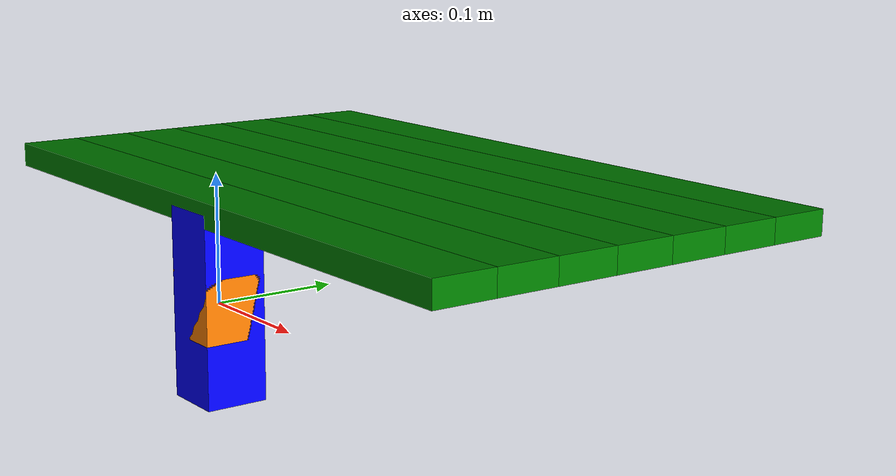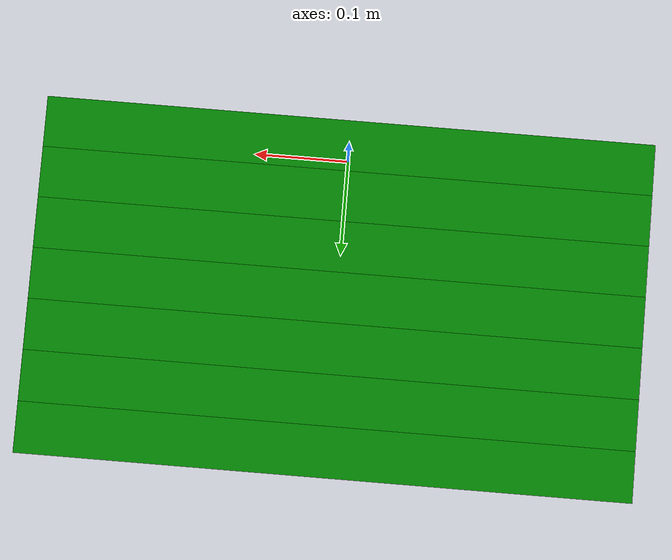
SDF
<?xml version='1.0'?>
<sdf version='1.6'>
  <model name='conveyor'>
    <link name='base_link'>

      <visual name='visual_base'>
      <pose frame=''>0 0 0 0 0 0</pose>
        <geometry>
          <box>
            <size>0.05 0.05 0.05</size>
          </box>
        </geometry>
        <material>
          <diffuse>1 0.5 0 1.0</diffuse>
        </material>
      </visual>
    </link>

    <link name='first_link'>
      <visual name='visual_1'>
      <pose frame=''>0 0 0 0 0 0</pose>
        <geometry>
          <box>
            <size>0.05 0.05 0.15</size>
          </box>
        </geometry>
        <material>
          <diffuse>0 0 1 1</diffuse>
        </material>
      </visual>
    </link>

    <link name='collision_link1'>
      <inertial>
        <mass>5</mass>
        <inertia>
          <ixx>1</ixx>
          <ixy>0</ixy>
          <ixz>0</ixz>
          <iyy>1</iyy>
          <iyz>0</iyz>
          <izz>1</izz>
        </inertia>
      </inertial>

      <self_collide>0</self_collide>
       <visual name='visual_01'>
        <pose frame=''>0 0 0.075 0 0 0</pose>
        <geometry>
          <box>
            <size>0.6 0.05 0.02</size>
          </box>
        </geometry>
        <material>
          <diffuse>0 0.5 0 1.0</diffuse>
        </material>
      </visual>

      <collision name='surface'>
        <pose frame=''>0 0 0.075 0 0 0</pose>
        <laser_retro>0</laser_retro>
        <max_contacts>10</max_contacts>
        <geometry>
          <box>
            <size>0.6 0.05 0.02</size>
          </box>
        </geometry>
        <surface>
          <friction>
            <ode>
              <mu>0.6</mu>
              <mu2>0.6</mu2>
              <fdir1>0 0 0</fdir1>
              <slip1>0</slip1>
              <slip2>0</slip2>
            </ode>
            <torsional>
              <coefficient>1</coefficient>
              <patch_radius>0</patch_radius>
              <surface_radius>0</surface_radius>
              <use_patch_radius>1</use_patch_radius>
              <ode>
                <slip>0</slip>
              </ode>
            </torsional>
          </friction>
          <bounce>
            <restitution_coefficient>0</restitution_coefficient>
            <threshold>1e+06</threshold>
          </bounce>
          <contact>
            <collide_without_contact>0</collide_without_contact>
            <collide_without_contact_bitmask>1</collide_without_contact_bitmask>
            <collide_bitmask>1</collide_bitmask>
            <ode>
              <soft_cfm>0</soft_cfm>
              <soft_erp>0.2</soft_erp>
              <kp>1e+13</kp>
              <kd>1</kd>
              <max_vel>0.01</max_vel>
              <min_depth>0</min_depth>
            </ode>
            <bullet>
              <split_impulse>1</split_impulse>
              <split_impulse_penetration_threshold>-0.01</split_impulse_penetration_threshold>
              <soft_cfm>0</soft_cfm>
              <soft_erp>0.2</soft_erp>
              <kp>1e+13</kp>
              <kd>1</kd>
            </bullet>
          </contact>
        </surface>
      </collision>
    </link>

    <link name='collision_frame_1'>
      <pose frame=''>0 0.025  0.06875 0 0 0</pose>
      <visual name='visual_02'>
        <geometry>
          <box>
            <size>0.01 0.01 0.01</size>
          </box>
        </geometry>
        <material>
          <diffuse>0 1 1 1.0</diffuse>
        </material>
      </visual>
    </link>

    <!-- When you uncomment this, make sure to increase the frame number -->
    <link name='collision_link2'>
      <pose frame=''>0 0.05 0.075 0 0 0</pose>

      <inertial>
        <mass>0.5</mass>
        <inertia>
          <ixx>1</ixx>
          <ixy>0</ixy>
          <ixz>0</ixz>
          <iyy>0.1</iyy>
          <iyz>0</iyz>
          <izz>1</izz>
        </inertia>
      </inertial>
      <gravity>0</gravity>
      <self_collide>0</self_collide>
      <kinematic>1</kinematic>
       <visual name='visual_02'>
        <geometry>
          <box>
            <size>0.6 0.05 0.02</size>
          </box>
        </geometry>
        <material>
          <diffuse>0 0.5 0 1.0</diffuse>
        </material>
      </visual>

      <collision name='surface2'>
        <laser_retro>0</laser_retro>
        <max_contacts>10</max_contacts>
        <geometry>
          <box>
            <size>0.6 0.05 0.02</size>
          </box>
        </geometry>
        <surface>
          <friction>
            <ode>
              <mu>0.6</mu>
              <mu2>0.6</mu2>
              <fdir1>0 0 0</fdir1>
              <slip1>0</slip1>
              <slip2>0</slip2>
            </ode>
            <torsional>
              <coefficient>1</coefficient>
              <patch_radius>0</patch_radius>
              <surface_radius>0</surface_radius>
              <use_patch_radius>1</use_patch_radius>
              <ode>
                <slip>0</slip>
              </ode>
            </torsional>
          </friction>
          <bounce>
            <restitution_coefficient>0</restitution_coefficient>
            <threshold>1e+06</threshold>
          </bounce>
          <contact>
            <collide_without_contact>0</collide_without_contact>
            <collide_without_contact_bitmask>1</collide_without_contact_bitmask>
            <collide_bitmask>1</collide_bitmask>
            <ode>
              <soft_cfm>0</soft_cfm>
              <soft_erp>0.2</soft_erp>
              <kp>1e+13</kp>
              <kd>1</kd>
              <max_vel>0.01</max_vel>
              <min_depth>0</min_depth>
            </ode>
            <bullet>
              <split_impulse>1</split_impulse>
              <split_impulse_penetration_threshold>-0.01</split_impulse_penetration_threshold>
              <soft_cfm>0</soft_cfm>
              <soft_erp>0.2</soft_erp>
              <kp>1e+13</kp>
              <kd>1</kd>
            </bullet>
          </contact>
        </surface>
      </collision>
    </link>

    <link name='collision_frame_2'>
      <pose frame=''>0 0.075  0.06875 0 0 0</pose>
      <visual name='visual_02'>
        <geometry>
          <box>
            <size>0.01 0.01 0.01</size>
          </box>
        </geometry>
        <material>
          <diffuse>0 1 1 1.0</diffuse>
        </material>
      </visual>
    </link>

    <link name='collision_link3'>
      <pose frame=''>0 0.1 0.075 0 0 0</pose>

      <inertial>
        <mass>0.5</mass>
        <inertia>
          <ixx>1</ixx>
          <ixy>0</ixy>
          <ixz>0</ixz>
          <iyy>0.1</iyy>
          <iyz>0</iyz>
          <izz>1</izz>
        </inertia>
      </inertial>
      <gravity>0</gravity>
      <self_collide>0</self_collide>
      <kinematic>1</kinematic>
       <visual name='visual_03'>
        <geometry>
          <box>
            <size>0.6 0.05 0.02</size>
          </box>
        </geometry>
        <material>
          <diffuse>0 0.5 0 1.0</diffuse>
        </material>
      </visual>

      <collision name='surface3'>
        <laser_retro>0</laser_retro>
        <max_contacts>10</max_contacts>
        <geometry>
          <box>
            <size>0.6 0.05 0.02</size>
          </box>
        </geometry>
        <surface>
          <friction>
            <ode>
              <mu>0.6</mu>
              <mu2>0.6</mu2>
              <fdir1>0 0 0</fdir1>
              <slip1>0</slip1>
              <slip2>0</slip2>
            </ode>
            <torsional>
              <coefficient>1</coefficient>
              <patch_radius>0</patch_radius>
              <surface_radius>0</surface_radius>
              <use_patch_radius>1</use_patch_radius>
              <ode>
                <slip>0</slip>
              </ode>
            </torsional>
          </friction>
          <bounce>
            <restitution_coefficient>0</restitution_coefficient>
            <threshold>1e+06</threshold>
          </bounce>
          <contact>
            <collide_without_contact>0</collide_without_contact>
            <collide_without_contact_bitmask>1</collide_without_contact_bitmask>
            <collide_bitmask>1</collide_bitmask>
            <ode>
              <soft_cfm>0</soft_cfm>
              <soft_erp>0.2</soft_erp>
              <kp>1e+13</kp>
              <kd>1</kd>
              <max_vel>0.01</max_vel>
              <min_depth>0</min_depth>
            </ode>
            <bullet>
              <split_impulse>1</split_impulse>
              <split_impulse_penetration_threshold>-0.01</split_impulse_penetration_threshold>
              <soft_cfm>0</soft_cfm>
              <soft_erp>0.2</soft_erp>
              <kp>1e+13</kp>
              <kd>1</kd>
            </bullet>
          </contact>
        </surface>
      </collision>
    </link>

<link name='collision_frame_3'>
      <pose frame=''>0 0.125  0.06875 0 0 0</pose>
      <visual name='visual_03'>
        <geometry>
          <box>
            <size>0.01 0.01 0.01</size>
          </box>
        </geometry>
        <material>
          <diffuse>0 1 1 1.0</diffuse>
        </material>
      </visual>
    </link>

    <link name='collision_link4'>
      <pose frame=''>0 0.15 0.075 0 0 0</pose>

      <inertial>
        <mass>0.5</mass>
        <inertia>
          <ixx>1</ixx>
          <ixy>0</ixy>
          <ixz>0</ixz>
          <iyy>0.1</iyy>
          <iyz>0</iyz>
          <izz>1</izz>
        </inertia>
      </inertial>
      <gravity>0</gravity>
      <self_collide>0</self_collide>
      <kinematic>1</kinematic>
       <visual name='visual_04'>
        <geometry>
          <box>
            <size>0.6 0.05 0.02</size>
          </box>
        </geometry>
        <material>
          <diffuse>0 0.5 0 1.0</diffuse>
        </material>
      </visual>

      <collision name='surface4'>
        <laser_retro>0</laser_retro>
        <max_contacts>10</max_contacts>
        <geometry>
          <box>
            <size>0.6 0.05 0.02</size>
          </box>
        </geometry>
        <surface>
          <friction>
            <ode>
              <mu>0.6</mu>
              <mu2>0.6</mu2>
              <fdir1>0 0 0</fdir1>
              <slip1>0</slip1>
              <slip2>0</slip2>
            </ode>
            <torsional>
              <coefficient>1</coefficient>
              <patch_radius>0</patch_radius>
              <surface_radius>0</surface_radius>
              <use_patch_radius>1</use_patch_radius>
              <ode>
                <slip>0</slip>
              </ode>
            </torsional>
          </friction>
          <bounce>
            <restitution_coefficient>0</restitution_coefficient>
            <threshold>1e+06</threshold>
          </bounce>
          <contact>
            <collide_without_contact>0</collide_without_contact>
            <collide_without_contact_bitmask>1</collide_without_contact_bitmask>
            <collide_bitmask>1</collide_bitmask>
            <ode>
              <soft_cfm>0</soft_cfm>
              <soft_erp>0.2</soft_erp>
              <kp>1e+13</kp>
              <kd>1</kd>
              <max_vel>0.01</max_vel>
              <min_depth>0</min_depth>
            </ode>
            <bullet>
              <split_impulse>1</split_impulse>
              <split_impulse_penetration_threshold>-0.01</split_impulse_penetration_threshold>
              <soft_cfm>0</soft_cfm>
              <soft_erp>0.2</soft_erp>
              <kp>1e+13</kp>
              <kd>1</kd>
            </bullet>
          </contact>
        </surface>
      </collision>
    </link>

    <link name='collision_frame_4'>
      <pose frame=''>0 0.175  0.06875 0 0 0</pose>
      <visual name='visual_04'>
        <geometry>
          <box>
            <size>0.01 0.01 0.01</size>
          </box>
        </geometry>
        <material>
          <diffuse>0 1 1 1.0</diffuse>
        </material>
      </visual>
    </link>

    <link name='collision_link5'>
      <pose frame=''>0 0.2 0.075 0 0 0</pose>

      <inertial>
        <mass>0.5</mass>
        <inertia>
          <ixx>1</ixx>
          <ixy>0</ixy>
          <ixz>0</ixz>
          <iyy>0.1</iyy>
          <iyz>0</iyz>
          <izz>1</izz>
        </inertia>
      </inertial>
      <gravity>0</gravity>
      <self_collide>0</self_collide>
      <kinematic>1</kinematic>
       <visual name='visual_05'>
        <geometry>
          <box>
            <size>0.6 0.05 0.02</size>
          </box>
        </geometry>
        <material>
          <diffuse>0 0.5 0 1.0</diffuse>
        </material>
      </visual>

      <collision name='surface5'>
        <laser_retro>0</laser_retro>
        <max_contacts>10</max_contacts>
        <geometry>
          <box>
            <size>0.6 0.05 0.02</size>
          </box>
        </geometry>
        <surface>
          <friction>
            <ode>
              <mu>0.6</mu>
              <mu2>0.6</mu2>
              <fdir1>0 0 0</fdir1>
              <slip1>0</slip1>
              <slip2>0</slip2>
            </ode>
            <torsional>
              <coefficient>1</coefficient>
              <patch_radius>0</patch_radius>
              <surface_radius>0</surface_radius>
              <use_patch_radius>1</use_patch_radius>
              <ode>
                <slip>0</slip>
              </ode>
            </torsional>
          </friction>
          <bounce>
            <restitution_coefficient>0</restitution_coefficient>
            <threshold>1e+06</threshold>
          </bounce>
          <contact>
            <collide_without_contact>0</collide_without_contact>
            <collide_without_contact_bitmask>1</collide_without_contact_bitmask>
            <collide_bitmask>1</collide_bitmask>
            <ode>
              <soft_cfm>0</soft_cfm>
              <soft_erp>0.2</soft_erp>
              <kp>1e+13</kp>
              <kd>1</kd>
              <max_vel>0.01</max_vel>
              <min_depth>0</min_depth>
            </ode>
            <bullet>
              <split_impulse>1</split_impulse>
              <split_impulse_penetration_threshold>-0.01</split_impulse_penetration_threshold>
              <soft_cfm>0</soft_cfm>
              <soft_erp>0.2</soft_erp>
              <kp>1e+13</kp>
              <kd>1</kd>
            </bullet>
          </contact>
        </surface>
      </collision>
    </link>

    <link name='collision_frame_5'>
      <pose frame=''>0 0.225  0.06875 0 0 0</pose>
      <visual name='visual_05'>
        <geometry>
          <box>
            <size>0.01 0.01 0.01</size>
          </box>
        </geometry>
        <material>
          <diffuse>0 1 1 1.0</diffuse>
        </material>
      </visual>
    </link>

    <link name='collision_link6'>
      <pose frame=''>0 0.25 0.075 0 0 0</pose>

      <inertial>
        <mass>0.5</mass>
        <inertia>
          <ixx>1</ixx>
          <ixy>0</ixy>
          <ixz>0</ixz>
          <iyy>0.1</iyy>
          <iyz>0</iyz>
          <izz>1</izz>
        </inertia>
      </inertial>
      <gravity>0</gravity>
      <self_collide>0</self_collide>
      <kinematic>1</kinematic>
       <visual name='visual_06'>
        <geometry>
          <box>
            <size>0.6 0.05 0.02</size>
          </box>
        </geometry>
        <material>
          <diffuse>0 0.5 0 1.0</diffuse>
        </material>
      </visual>

      <collision name='surface6'>
        <laser_retro>0</laser_retro>
        <max_contacts>10</max_contacts>
        <geometry>
          <box>
            <size>0.6 0.05 0.02</size>
          </box>
        </geometry>
        <surface>
          <friction>
            <ode>
              <mu>0.6</mu>
              <mu2>0.6</mu2>
              <fdir1>0 0 0</fdir1>
              <slip1>0</slip1>
              <slip2>0</slip2>
            </ode>
            <torsional>
              <coefficient>1</coefficient>
              <patch_radius>0</patch_radius>
              <surface_radius>0</surface_radius>
              <use_patch_radius>1</use_patch_radius>
              <ode>
                <slip>0</slip>
              </ode>
            </torsional>
          </friction>
          <bounce>
            <restitution_coefficient>0</restitution_coefficient>
            <threshold>1e+06</threshold>
          </bounce>
          <contact>
            <collide_without_contact>0</collide_without_contact>
            <collide_without_contact_bitmask>1</collide_without_contact_bitmask>
            <collide_bitmask>1</collide_bitmask>
            <ode>
              <soft_cfm>0</soft_cfm>
              <soft_erp>0.2</soft_erp>
              <kp>1e+13</kp>
              <kd>1</kd>
              <max_vel>0.01</max_vel>
              <min_depth>0</min_depth>
            </ode>
            <bullet>
              <split_impulse>1</split_impulse>
              <split_impulse_penetration_threshold>-0.01</split_impulse_penetration_threshold>
              <soft_cfm>0</soft_cfm>
              <soft_erp>0.2</soft_erp>
              <kp>1e+13</kp>
              <kd>1</kd>
            </bullet>
          </contact>
        </surface>
      </collision>
    </link>

    <link name='collision_frame_6'>
      <pose frame=''>0 0.275  0.06875 0 0 0</pose>
      <visual name='visual_06'>
        <geometry>
          <box>
            <size>0.01 0.01 0.01</size>
          </box>
        </geometry>
        <material>
          <diffuse>0 1 1 1.0</diffuse>
        </material>
      </visual>
    </link>

    <link name='collision_link7'>
      <pose frame=''>0 0.3 0.075 0 0 0</pose>

      <inertial>
        <mass>0.5</mass>
        <inertia>
          <ixx>1</ixx>
          <ixy>0</ixy>
          <ixz>0</ixz>
          <iyy>0.1</iyy>
          <iyz>0</iyz>
          <izz>1</izz>
        </inertia>
      </inertial>
      <gravity>0</gravity>
      <self_collide>0</self_collide>
      <kinematic>1</kinematic>
       <visual name='visual_07'>
        <geometry>
          <box>
            <size>0.6 0.05 0.02</size>
          </box>
        </geometry>
        <material>
          <diffuse>0 0.5 0 1.0</diffuse>
        </material>
      </visual>

      <collision name='surface7'>
        <laser_retro>0</laser_retro>
        <max_contacts>10</max_contacts>
        <geometry>
          <box>
            <size>0.6 0.05 0.02</size>
          </box>
        </geometry>
        <surface>
          <friction>
            <ode>
              <mu>0.6</mu>
              <mu2>0.6</mu2>
              <fdir1>0 0 0</fdir1>
              <slip1>0</slip1>
              <slip2>0</slip2>
            </ode>
            <torsional>
              <coefficient>1</coefficient>
              <patch_radius>0</patch_radius>
              <surface_radius>0</surface_radius>
              <use_patch_radius>1</use_patch_radius>
              <ode>
                <slip>0</slip>
              </ode>
            </torsional>
          </friction>
          <bounce>
            <restitution_coefficient>0</restitution_coefficient>
            <threshold>1e+06</threshold>
          </bounce>
          <contact>
            <collide_without_contact>0</collide_without_contact>
            <collide_without_contact_bitmask>1</collide_without_contact_bitmask>
            <collide_bitmask>1</collide_bitmask>
            <ode>
              <soft_cfm>0</soft_cfm>
              <soft_erp>0.2</soft_erp>
              <kp>1e+13</kp>
              <kd>1</kd>
              <max_vel>0.01</max_vel>
              <min_depth>0</min_depth>
            </ode>
            <bullet>
              <split_impulse>1</split_impulse>
              <split_impulse_penetration_threshold>-0.01</split_impulse_penetration_threshold>
              <soft_cfm>0</soft_cfm>
              <soft_erp>0.2</soft_erp>
              <kp>1e+13</kp>
              <kd>1</kd>
            </bullet>
          </contact>
        </surface>
      </collision>
    </link>

    <joint name="zeroth_joint" type="prismatic">
      <parent>base_link</parent>
      <child>first_link</child>
      <axis>
        <dynamics>
          <friction>9</friction>
          <damping>5</damping>
          <spring_stiffness>10</spring_stiffness>
        </dynamics>
        <xyz>0 1 0</xyz>
      </axis>
    </joint>

    <joint name="first_joint" type="revolute">
      <parent>first_link</parent>
      <child>collision_link1</child>
      <axis>
        <dynamics>
          <friction>9</friction>
          <damping>5</damping>
          <spring_stiffness>10</spring_stiffness>
        </dynamics>
        <xyz>1 0 0</xyz>
      </axis>
    </joint>

    <joint name="collision_to_frame_extention" type="fixed">
      <parent>collision_link1</parent>
      <child>collision_frame_1</child>
    </joint>

    <joint name="second_joint" type="revolute">
      <parent>collision_frame_1</parent>
      <child>collision_link2</child>
      <pose>0 -0.025 -0.0125 0 0 0</pose>
      <axis>
        <dynamics>
          <friction>9</friction>
          <damping>5</damping>
          <spring_stiffness>10</spring_stiffness>
        </dynamics>
        <xyz>1 0 0</xyz>
        <limit lower="-1.0" upper="0.0" effort="0.0" velocity="0.0"/>
      </axis>
    </joint>

    <joint name="collision_to_frame_extention2" type="fixed">
      <parent>collision_link2</parent>
      <child>collision_frame_2</child>
    </joint>

    <joint name="third_joint" type="revolute">
      <parent>collision_frame_2</parent>
      <child>collision_link3</child>
      <pose>0 -0.025 -0.0125 0 0 0</pose>
      <axis>
        <dynamics>
          <friction>9</friction>
          <damping>5</damping>
          <spring_stiffness>10</spring_stiffness>
        </dynamics>
        <xyz>1 0 0</xyz>
        <limit lower="-1.0" upper="0.0" effort="0.0" velocity="0.0"/>
      </axis>
    </joint>

    <joint name="collision_to_frame_extention3" type="fixed">
      <parent>collision_link3</parent>
      <child>collision_frame_3</child>
    </joint>

    <joint name="fourth_joint" type="revolute">
      <parent>collision_frame_3</parent>
      <child>collision_link4</child>
      <pose>0 -0.025 -0.0125 0 0 0</pose>
      <axis>
        <dynamics>
          <friction>9</friction>
          <damping>5</damping>
          <spring_stiffness>10</spring_stiffness>
        </dynamics>
        <xyz>1 0 0</xyz>
        <limit lower="-1.0" upper="0.0" effort="0.0" velocity="0.0"/>
      </axis>
    </joint>

    <joint name="collision_to_frame_extention4" type="fixed">
      <parent>collision_link4</parent>
      <child>collision_frame_4</child>
    </joint>

    <joint name="fifth_joint" type="revolute">
      <parent>collision_frame_4</parent>
      <child>collision_link5</child>
      <pose>0 -0.025 -0.0125 0 0 0</pose>
      <axis>
        <dynamics>
          <friction>9</friction>
          <damping>5</damping>
          <spring_stiffness>10</spring_stiffness>
        </dynamics>
        <xyz>1 0 0</xyz>
        <limit lower="-1.0" upper="0.0" effort="0.0" velocity="0.0"/>
      </axis>
    </joint>

    <joint name="collision_to_frame_extention5" type="fixed">
      <parent>collision_link5</parent>
      <child>collision_frame_5</child>
    </joint>

    <joint name="sixth_joint" type="revolute">
      <parent>collision_frame_5</parent>
      <child>collision_link6</child>
      <pose>0 -0.025 -0.0125 0 0 0</pose>
      <axis>
        <dynamics>
          <friction>9</friction>
          <damping>5</damping>
          <spring_stiffness>10</spring_stiffness>
        </dynamics>
        <xyz>1 0 0</xyz>
        <limit lower="-1.0" upper="0.0" effort="0.0" velocity="0.0"/>
      </axis>
    </joint>

    <joint name="collision_to_frame_extention6" type="fixed">
      <parent>collision_link6</parent>
      <child>collision_frame_6</child>
    </joint>

    <joint name="seventh_joint" type="revolute">
      <parent>collision_frame_6</parent>
      <child>collision_link7</child>
      <pose>0 -0.025 -0.0125 0 0 0</pose>
      <axis>
        <dynamics>
          <friction>9</friction>
          <damping>5</damping>
          <spring_stiffness>10</spring_stiffness>
        </dynamics>
        <xyz>1 0 0</xyz>
        <limit lower="-1.0" upper="0.0" effort="0.0" velocity="0.0"/>
      </axis>
    </joint>

    <transmission name="tran_0">
      <robotNamespace>/conveyor</robotNamespace>
      <type>transmission_interface/SimpleTransmission</type>
      <joint name="zeroth_joint">
        <hardwareInterface>PositionJointInterface</hardwareInterface>
      </joint>
      <actuator name="motor_0">
        <hardwareInterface>PositionJointInterface</hardwareInterface>
        <mechanicalReduction>1</mechanicalReduction>
      </actuator>
    </transmission>

    <transmission name="tran_1">
      <robotNamespace>/conveyor</robotNamespace>
      <type>transmission_interface/SimpleTransmission</type>
      <joint name="first_joint">
        <hardwareInterface>PositionJointInterface</hardwareInterface>
      </joint>
      <actuator name="motor_1">
        <hardwareInterface>PositionJointInterface</hardwareInterface>
        <mechanicalReduction>1</mechanicalReduction>
      </actuator>
    </transmission>

    <transmission name="tran_2">
      <robotNamespace>/conveyor</robotNamespace>
      <type>transmission_interface/SimpleTransmission</type>
      <joint name="second_joint">
        <hardwareInterface>PositionJointInterface</hardwareInterface>
      </joint>
      <actuator name="motor_2">
        <hardwareInterface>PositionJointInterface</hardwareInterface>
        <mechanicalReduction>1</mechanicalReduction>
      </actuator>
    </transmission>
    <transmission name="tran_3">
      <robotNamespace>/conveyor</robotNamespace>
      <type>transmission_interface/SimpleTransmission</type>
      <joint name="third_joint">
        <hardwareInterface>PositionJointInterface</hardwareInterface>
      </joint>
      <actuator name="motor_3">
        <hardwareInterface>PositionJointInterface</hardwareInterface>
        <mechanicalReduction>1</mechanicalReduction>
      </actuator>
    </transmission>

    <transmission name="tran_4">
      <robotNamespace>/conveyor</robotNamespace>
      <type>transmission_interface/SimpleTransmission</type>
      <joint name="fourth_joint">
        <hardwareInterface>PositionJointInterface</hardwareInterface>
      </joint>
      <actuator name="motor_4">
        <hardwareInterface>PositionJointInterface</hardwareInterface>
        <mechanicalReduction>1</mechanicalReduction>
      </actuator>
    </transmission>

    <transmission name="tran_5">
      <robotNamespace>/conveyor</robotNamespace>
      <type>transmission_interface/SimpleTransmission</type>
      <joint name="fifth_joint">
        <hardwareInterface>PositionJointInterface</hardwareInterface>
      </joint>
      <actuator name="motor_5">
        <hardwareInterface>PositionJointInterface</hardwareInterface>
        <mechanicalReduction>1</mechanicalReduction>
      </actuator>
    </transmission>

    <transmission name="tran_6">
      <robotNamespace>/conveyor</robotNamespace>
      <type>transmission_interface/SimpleTransmission</type>
      <joint name="seventh_joint">
        <hardwareInterface>PositionJointInterface</hardwareInterface>
      </joint>
      <actuator name="motor_6">
        <hardwareInterface>PositionJointInterface</hardwareInterface>
        <mechanicalReduction>1</mechanicalReduction>
      </actuator>
    </transmission>

    <transmission name="tran_7">
      <robotNamespace>/conveyor</robotNamespace>
      <type>transmission_interface/SimpleTransmission</type>
      <joint name="seventh_joint">
        <hardwareInterface>PositionJointInterface</hardwareInterface>
      </joint>
      <actuator name="motor_7">
        <hardwareInterface>PositionJointInterface</hardwareInterface>
        <mechanicalReduction>1</mechanicalReduction>
      </actuator>
    </transmission>

  </model>
</sdf>
